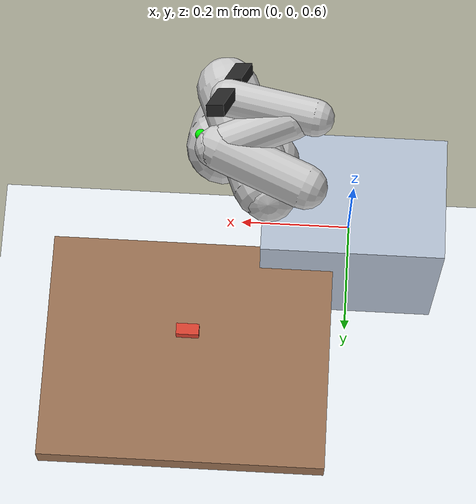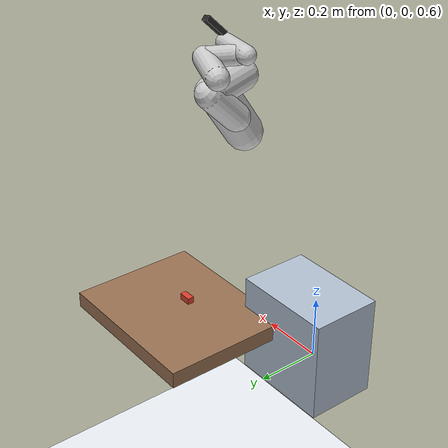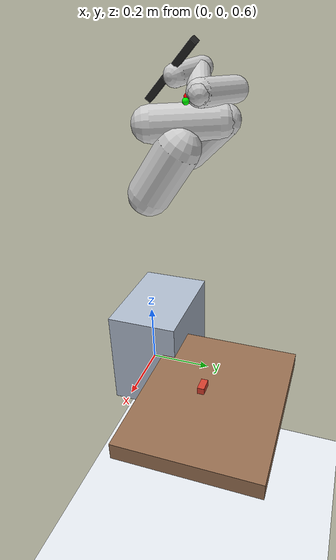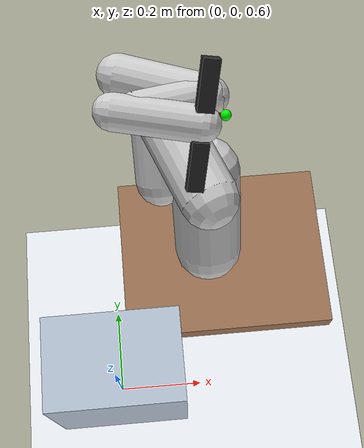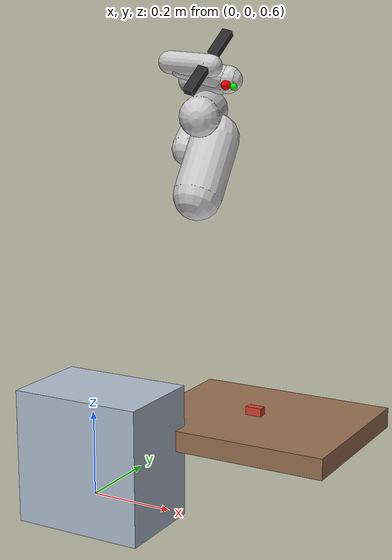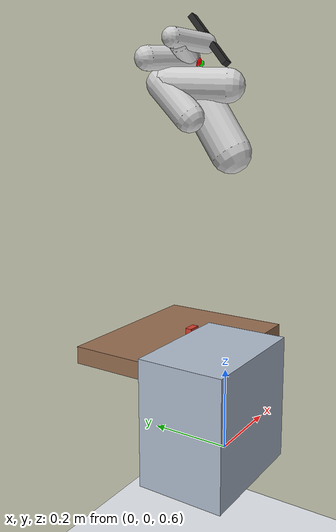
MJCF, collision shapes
<mujoco model="humanoid_right_arm">
  <compiler angle="radian" coordinate="local" meshdir="../robot_description/meshes" autolimits="true"/>
  <option timestep="0.004" gravity="0 0 -9.81" integrator="implicitfast" cone="elliptic"/>
  <visual>
    <headlight ambient="0.55 0.55 0.55" diffuse="0.4 0.4 0.4" specular="0.1 0.1 0.1"/>
    <rgba haze="0.15 0.2 0.25 1"/>
  </visual>
  <default>
    <default class="visual">
      <geom group="1" type="mesh" contype="0" conaffinity="0"/>
    </default>
    <default class="collision">
      <geom group="3" density="900"/>
    </default>
  </default>
  <asset>
    <mesh name="base_link_mesh" file="base_link.STL"/>
    <mesh name="right_base_pitch_link_mesh" file="right_base_pitch_link.STL"/>
    <mesh name="right_shoulder_roll_link_mesh" file="right_shoulder_roll_link.STL"/>
    <mesh name="right_shoulder_yaw_link_mesh" file="right_shoulder_yaw_link.STL"/>
    <mesh name="right_elbow_pitch_link_mesh" file="right_elbow_pitch_link.STL"/>
    <mesh name="right_wrist_pitch_link_mesh" file="right_wrist_pitch_link.STL"/>
    <mesh name="right_wrist_yaw_link_mesh" file="right_wrist_yaw_link.STL"/>
    <mesh name="right_gripper1_link_mesh" file="right_gripper1_link.STL"/>
    <mesh name="right_gripper2_link_mesh" file="right_gripper2_link.STL"/>
  </asset>
  <worldbody>
    <light name="sun" pos="0 0 2.4" dir="0 0 -1" directional="true"/>
    <camera name="overview" pos="1.25 -1.1 1.35" xyaxes="0.72 0.69 0 -0.35 0.36 0.86"/>
    <geom name="ground" type="plane" size="2 2 0.1" rgba="0.92 0.94 0.96 1" friction="1 0.1 0.01"/>
    <geom name="table" type="box" pos="0.28 0.30 0.725" size="0.25 0.20 0.025" rgba="0.60 0.44 0.32 1" friction="1.1 0.05 0.01"/>
    <body name="brick" pos="0.28 0.27 0.77">
      <freejoint name="brick_freejoint"/>
      <geom name="brick_geom" type="box" size="0.02 0.01 0.01" mass="0.08" friction="1.2 0.02 0.002" rgba="0.85 0.25 0.18 1"/>
      <site name="brick_site" type="sphere" size="0.008" rgba="1 1 0 1"/>
    </body>
    <body name="base_link" pos="0 0 0.6">
      <inertial pos="1.07784451355147E-06 0.0284280497758001 0.0930501056429116" mass="25.2827775843096" fullinertia="1.05306308303982 0.379347819173407 1.39119566760917 5.35850857338871E-07 -8.40544864225828E-06 4.4668154477851E-06"/>
      <geom name="base_link_visual" type="mesh" mesh="base_link_mesh" contype="0" conaffinity="0" group="1" rgba="0.9 0.9 0.9 1"/>
      <geom name="base_collision" type="box" pos="0 0.03 0.09" size="0.16 0.11 0.16" rgba="0.7 0.75 0.82 1"/>
      <body name="right_base_pitch_link" pos="0.21400441954841 0.189998253900819 0.822999049601032" euler="1.5707963267949 0 1.5707963267949">
        <joint name="right_base_pitch_joint" type="hinge" axis="0 0 -1" range="-1.6 1.6" damping="3.0" armature="0.02" limited="true"/>
        <inertial pos="-0.0394540906091678 -0.00117049156839028 0.0362772096702395" mass="0.244817289982652" fullinertia="0.00042258611468929 0.00043362815715413 0.000449580199614448 -3.33213778042763E-07 6.13148868322963E-05 1.84861840406614E-06"/>
        <geom name="right_base_pitch_link_visual" type="mesh" mesh="right_base_pitch_link_mesh" contype="0" conaffinity="0" group="1" rgba="0.9 0.9 0.9 1"/>
        <geom name="right_base_pitch_collision" type="capsule" fromto="0 0 0 -0.12 0 0.08" size="0.055" rgba="0.8 0.8 0.8 1"/>
        <body name="right_shoulder_roll_link" pos="0.0512767086241353 0.00154568843845215 0.070000086877735" euler="1.57079632679489 -0.0124370994640314 1.60093654227117">
          <joint name="right_shoulder_roll_joint" type="hinge" axis="0 0 -1" range="-1.4 1.4" damping="3.0" armature="0.02" limited="true"/>
          <inertial pos="-0.0504751969032359 -2.3505993093087E-06 -0.0382593125478601" mass="0.219562602027133" fullinertia="0.000414250305228579 0.000412104091228023 0.000365288665382115 -5.1544201930132E-09 -8.79018796006794E-05 -6.24422590434745E-08"/>
          <geom name="right_shoulder_roll_link_visual" type="mesh" mesh="right_shoulder_roll_link_mesh" contype="0" conaffinity="0" group="1" rgba="0.9 0.9 0.9 1"/>
          <geom name="right_shoulder_roll_collision" type="capsule" fromto="0 0 0 -0.15 0 -0.06" size="0.045" rgba="0.8 0.8 0.8 1"/>
          <body name="right_shoulder_yaw_link" pos="-0.161499730454391 0 -0.0674997882054564" euler="1.5707963267949 -0.209915812016821 -1.5707963267949">
            <joint name="right_shoulder_yaw_joint" type="hinge" axis="0 0 1" range="-1.8 1.8" damping="3.0" armature="0.02" limited="true"/>
            <inertial pos="-0.020385273211367 -8.15235141520682E-06 0.0357353445479509" mass="0.106143604615312" fullinertia="9.66386839936161E-05 0.000122064598284769 0.00010313012003071 -4.74531869270227E-09 2.12882628388833E-05 -6.1579299009481E-08"/>
            <geom name="right_shoulder_yaw_link_visual" type="mesh" mesh="right_shoulder_yaw_link_mesh" contype="0" conaffinity="0" group="1" rgba="0.9 0.9 0.9 1"/>
            <geom name="right_shoulder_yaw_collision" type="capsule" fromto="0 0 0 0.0 0.07 -0.10" size="0.04" rgba="0.8 0.8 0.8 1"/>
            <body name="right_elbow_pitch_link" pos="0.0495000377373268 0 0.0624999168897828" euler="1.5707963267949 0.00263601886731738 1.5707963267949">
              <joint name="right_elbow_pitch_joint" type="hinge" axis="-0.333848242516012 0.0592718558412337 0.940761499039" range="-2.0 2.0" damping="3.0" armature="0.02" limited="true"/>
              <inertial pos="-3.42841572391756E-05 0.0729459113904672 -0.0410111671034344" mass="0.154099206711241" fullinertia="8.75612800169932E-05 8.00343513136428E-05 7.60282435942892E-05 -8.24914993394397E-08 2.8611763084907E-08 9.62612120488893E-06"/>
              <geom name="right_elbow_pitch_link_visual" type="mesh" mesh="right_elbow_pitch_link_mesh" contype="0" conaffinity="0" group="1" rgba="0.9 0.9 0.9 1"/>
              <geom name="right_elbow_pitch_collision" type="capsule" fromto="0 0 0 0.0 0.12 -0.05" size="0.032" rgba="0.8 0.8 0.8 1"/>
              <body name="right_wrist_pitch_link" pos="0 0.126500083668823 -0.0495002104136634" euler="1.5707963267949 0.208003209624867 3.14159265358979">
                <joint name="right_wrist_pitch_joint" type="hinge" axis="0 0 -1" range="-1.8 1.8" damping="3.0" armature="0.02" limited="true"/>
                <inertial pos="2.75788182445003E-05 -0.000871878112892799 0.104186529687359" mass="0.192205595442942" fullinertia="0.000302459654412395 0.00028537077989617 9.91159076780823E-05 8.24266800328281E-08 2.75449341259816E-08 3.77471294040012E-05"/>
                <geom name="right_wrist_pitch_link_visual" type="mesh" mesh="right_wrist_pitch_link_mesh" contype="0" conaffinity="0" group="1" rgba="0.9 0.9 0.9 1"/>
                <geom name="right_wrist_pitch_collision" type="capsule" fromto="0 0 0 0.0 0.04 0.11" size="0.028" rgba="0.8 0.8 0.8 1"/>
                <body name="right_wrist_yaw_link" pos="0 0.0414999999999797 0.140500210413661" euler="1.5707963267949 0.575197538261195 3.14159265358979">
                  <joint name="right_wrist_yaw_joint" type="hinge" axis="0 0 -1" range="-2.5 2.5" damping="3.0" armature="0.02" limited="true"/>
                  <inertial pos="7.27612933126079E-05 0.0809191230537369 -0.0386606819862753" mass="0.175438598998815" fullinertia="9.6324565447174E-05 0.000109953050418614 0.000125124839716495 1.37624512021152E-07 2.89958169269242E-06 5.03326002219079E-06"/>
                  <geom name="right_wrist_yaw_link_visual" type="mesh" mesh="right_wrist_yaw_link_mesh" contype="0" conaffinity="0" group="1" rgba="0.9 0.9 0.9 1"/>
                  <geom name="right_wrist_yaw_collision" type="capsule" fromto="0 0 0 0.0 0.12 -0.03" size="0.026" rgba="0.8 0.8 0.8 1"/>
                  <site name="ee_site" type="sphere" pos="0 0.145 0.024" size="0.012" rgba="1 0 0 1"/>
                  <site name="grasp_target_site" type="sphere" pos="0 0.165 0.024" size="0.008" rgba="0 1 0 1"/>
                  <body name="right_gripper1_link" pos="0 0.141000000000003 -0.0424999999999999" euler="1.5707963267949 0 3.14159265358979">
                    <joint name="right_gripper1_joint" type="slide" axis="1 0 0" range="0.0 0.028" damping="1.0" armature="0.001" limited="true"/>
                    <inertial pos="-0.0594271349448385 -0.0021592700647648 0.0242071304277063" mass="0.0358339207664623" fullinertia="1.96900849491953E-05 1.51820051704718E-05 8.95629031357462E-06 1.49577745788164E-07 -2.61611297419697E-06 4.68868627254808E-07"/>
                    <geom name="right_gripper1_link_visual" type="mesh" mesh="right_gripper1_link_mesh" contype="0" conaffinity="0" group="1" rgba="0.9 0.9 0.9 1"/>
                    <geom name="finger_left_pad" type="box" pos="-0.055 0 0.024" size="0.035 0.008 0.012" friction="1.5 0.02 0.001" rgba="0.15 0.15 0.15 1"/>
                  </body>
                  <body name="right_gripper2_link" pos="0 0.141000000000003 -0.0424999999999999" euler="1.5707963267949 0 3.14159265358979">
                    <joint name="right_gripper2_joint" type="slide" axis="1 0 0" range="-0.028 0.0" damping="1.0" armature="0.001" limited="true"/>
                    <inertial pos="0.0596503865175193 0.0019659579201895 0.0221271099610874" mass="0.0393551869062514" fullinertia="1.98397159910276E-05 1.54499686755966E-05 9.3435573957773E-06 1.49583238832345E-07 2.6160400152461E-06 -4.68723727640429E-07"/>
                    <geom name="right_gripper2_link_visual" type="mesh" mesh="right_gripper2_link_mesh" contype="0" conaffinity="0" group="1" rgba="0.9 0.9 0.9 1"/>
                    <geom name="finger_right_pad" type="box" pos="0.055 0 0.024" size="0.035 0.008 0.012" friction="1.5 0.02 0.001" rgba="0.15 0.15 0.15 1"/>
                  </body>
                </body>
              </body>
            </body>
          </body>
        </body>
      </body>
    </body>
  </worldbody>
  <actuator>
    <position name="right_base_pitch_joint_act" joint="right_base_pitch_joint" kp="80" ctrlrange="-1.6 1.6" forcelimited="false"/>
    <position name="right_shoulder_roll_joint_act" joint="right_shoulder_roll_joint" kp="80" ctrlrange="-1.4 1.4" forcelimited="false"/>
    <position name="right_shoulder_yaw_joint_act" joint="right_shoulder_yaw_joint" kp="70" ctrlrange="-1.8 1.8" forcelimited="false"/>
    <position name="right_elbow_pitch_joint_act" joint="right_elbow_pitch_joint" kp="70" ctrlrange="-2.0 2.0" forcelimited="false"/>
    <position name="right_wrist_pitch_joint_act" joint="right_wrist_pitch_joint" kp="40" ctrlrange="-1.8 1.8" forcelimited="false"/>
    <position name="right_wrist_yaw_joint_act" joint="right_wrist_yaw_joint" kp="35" ctrlrange="-2.5 2.5" forcelimited="false"/>
    <position name="right_gripper1_joint_act" joint="right_gripper1_joint" kp="250" ctrlrange="0.0 0.028" forcelimited="false"/>
    <position name="right_gripper2_joint_act" joint="right_gripper2_joint" kp="250" ctrlrange="-0.028 0.0" forcelimited="false"/>
  </actuator>
  <keyframe>
    <key name="home" qpos="0 0 0 0 0 0 0.025 -0.025 0.28 0.27 0.77 1 0 0 0"/>
  </keyframe>
</mujoco>
